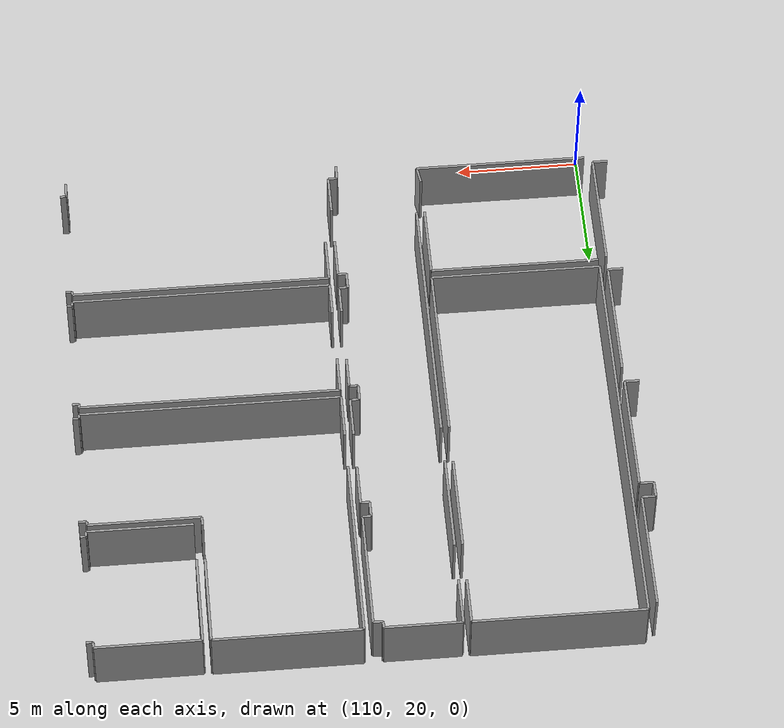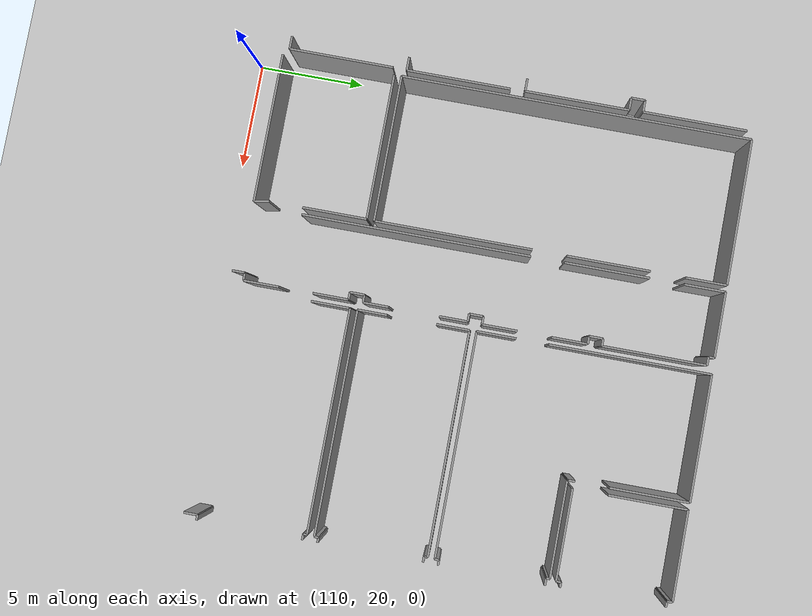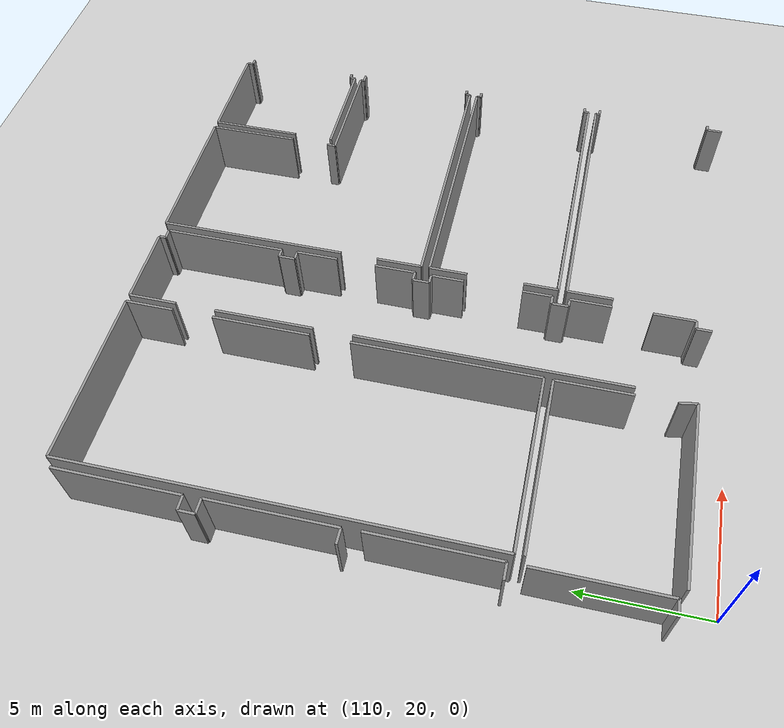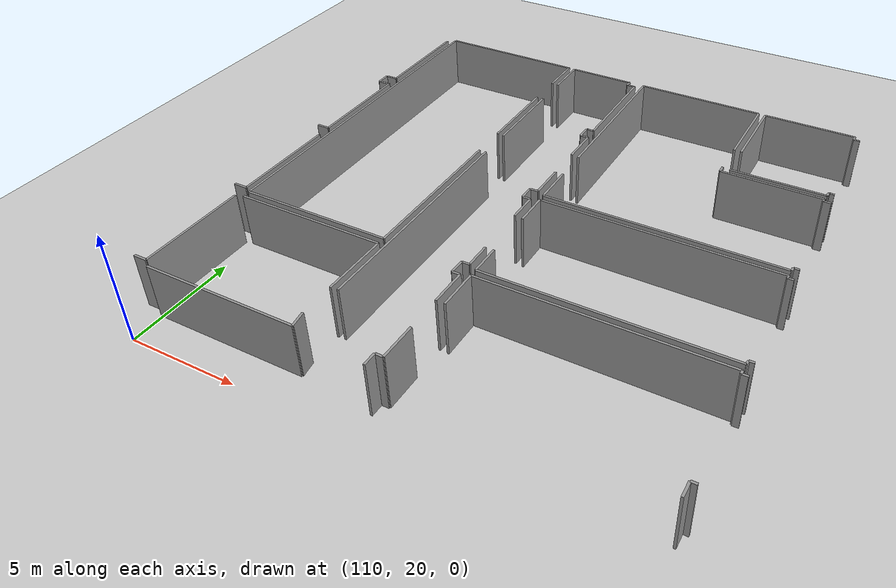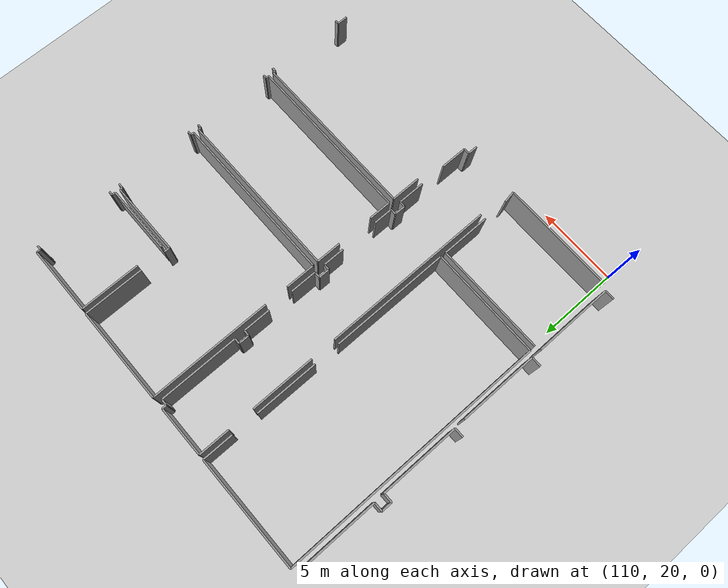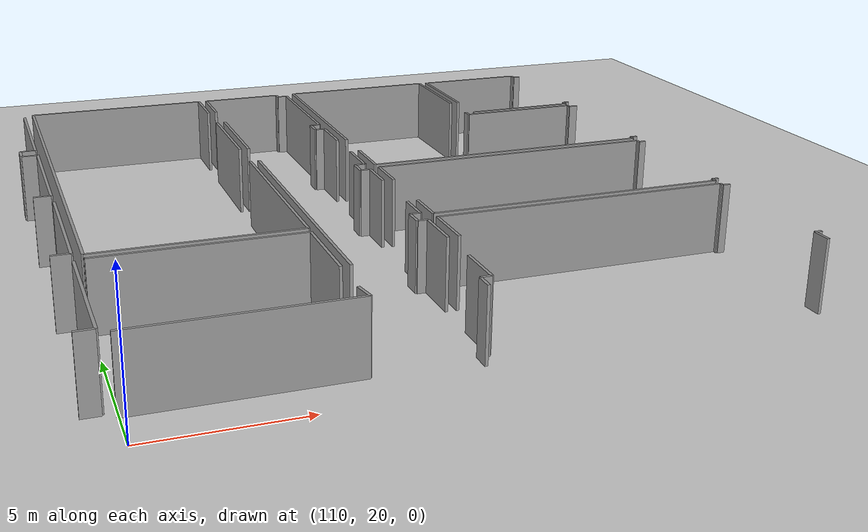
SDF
<sdf version="1.6">
 <world name="default">
  <model name="ground_plane">
   <static>1</static>
   <link name="link">
    <collision name="collision">
     <geometry><plane><normal>0 0 1</normal><size>100 100</size></plane></geometry>
     <surface><friction><ode><mu>100</mu><mu2>50</mu2></ode></friction></surface>
    </collision>
    <visual name="visual">
     <cast_shadows>0</cast_shadows>
     <geometry><plane><normal>0 0 1</normal><size>100 100</size></plane></geometry>
     <material>
      <script><uri>file://media/materials/scripts/gazebo.material</uri><name>Gazebo/Grey</name></script>
     </material>
    </visual>
   </link>
  </model>
  <model name="50015848">
   <static>1</static>
   <link name="Wall_986">
    <collision name="Wall_986_Collision">
     <geometry><box><size>4.91750661279 0.1 2.5</size></box></geometry>
     <pose>2.4587533064 0 1.25 0 0 0</pose>
    </collision>
    <visual name="Wall_986_Visual">
     <pose>2.4587533064 0 1.25 0 0 0</pose>
     <geometry><box><size>4.91750661279 0.1 2.5</size></box></geometry>
     <material>
      <script><uri>file://media/materials/scripts/gazebo.material</uri><name>Gazebo/Grey</name></script>
      <ambient>1 1 1 1</ambient>
     </material>
    </visual>
    <pose>241.354401233 -0.298638113784 0 0 0 -1.57079632679</pose>
   </link>
   <link name="Wall_987">
    <collision name="Wall_987_Collision">
     <geometry><box><size>0.55312751746 0.1 2.5</size></box></geometry>
     <pose>0.27656375873 0 1.25 0 0 0</pose>
    </collision>
    <visual name="Wall_987_Visual">
     <pose>0.27656375873 0 1.25 0 0 0</pose>
     <geometry><box><size>0.55312751746 0.1 2.5</size></box></geometry>
     <material>
      <script><uri>file://media/materials/scripts/gazebo.material</uri><name>Gazebo/Grey</name></script>
      <ambient>1 1 1 1</ambient>
     </material>
    </visual>
    <pose>241.354401233 -5.21614472658 0 0 0 3.14159265359</pose>
   </link>
   <link name="Wall_988">
    <collision name="Wall_988_Collision">
     <geometry><box><size>0.652842707534 0.1 2.5</size></box></geometry>
     <pose>0.326421353767 0 1.25 0 0 0</pose>
    </collision>
    <visual name="Wall_988_Visual">
     <pose>0.326421353767 0 1.25 0 0 0</pose>
     <geometry><box><size>0.652842707534 0.1 2.5</size></box></geometry>
     <material>
      <script><uri>file://media/materials/scripts/gazebo.material</uri><name>Gazebo/Grey</name></script>
      <ambient>1 1 1 1</ambient>
     </material>
    </visual>
    <pose>240.801273716 -5.21614472658 0 0 0 -1.57079632679</pose>
   </link>
   <link name="Wall_989">
    <collision name="Wall_989_Collision">
     <geometry><box><size>0.578500339361 0.1 2.5</size></box></geometry>
     <pose>0.289250169681 0 1.25 0 0 0</pose>
    </collision>
    <visual name="Wall_989_Visual">
     <pose>0.289250169681 0 1.25 0 0 0</pose>
     <geometry><box><size>0.578500339361 0.1 2.5</size></box></geometry>
     <material>
      <script><uri>file://media/materials/scripts/gazebo.material</uri><name>Gazebo/Grey</name></script>
      <ambient>1 1 1 1</ambient>
     </material>
    </visual>
    <pose>240.801273716 -5.86898743411 0 0 0 0.0</pose>
   </link>
   <link name="Wall_990">
    <collision name="Wall_990_Collision">
     <geometry><box><size>4.92258117717 0.1 2.5</size></box></geometry>
     <pose>2.46129058859 0 1.25 0 0 0</pose>
    </collision>
    <visual name="Wall_990_Visual">
     <pose>2.46129058859 0 1.25 0 0 0</pose>
     <geometry><box><size>4.92258117717 0.1 2.5</size></box></geometry>
     <material>
      <script><uri>file://media/materials/scripts/gazebo.material</uri><name>Gazebo/Grey</name></script>
      <ambient>1 1 1 1</ambient>
     </material>
    </visual>
    <pose>241.379774055 -5.86898743411 0 0 0 -1.57079632679</pose>
   </link>
   <link name="Wall_991">
    <collision name="Wall_991_Collision">
     <geometry><box><size>0.591186750312 0.1 2.5</size></box></geometry>
     <pose>0.295593375156 0 1.25 0 0 0</pose>
    </collision>
    <visual name="Wall_991_Visual">
     <pose>0.295593375156 0 1.25 0 0 0</pose>
     <geometry><box><size>0.591186750312 0.1 2.5</size></box></geometry>
     <material>
      <script><uri>file://media/materials/scripts/gazebo.material</uri><name>Gazebo/Grey</name></script>
      <ambient>1 1 1 1</ambient>
     </material>
    </visual>
    <pose>241.379774055 -10.7915686113 0 0 0 3.14159265359</pose>
   </link>
   <link name="Wall_994">
    <collision name="Wall_994_Collision">
     <geometry><box><size>4.91852152567 0.1 2.5</size></box></geometry>
     <pose>2.45926076283 0 1.25 0 0 0</pose>
    </collision>
    <visual name="Wall_994_Visual">
     <pose>2.45926076283 0 1.25 0 0 0</pose>
     <geometry><box><size>4.91852152567 0.1 2.5</size></box></geometry>
     <material>
      <script><uri>file://media/materials/scripts/gazebo.material</uri><name>Gazebo/Grey</name></script>
      <ambient>1 1 1 1</ambient>
     </material>
    </visual>
    <pose>241.402609595 -11.4827242799 0 0 0 -1.57079632679</pose>
   </link>
   <link name="Wall_995">
    <collision name="Wall_995_Collision">
     <geometry><box><size>0.624171418785 0.1 2.5</size></box></geometry>
     <pose>0.312085709392 0 1.25 0 0 0</pose>
    </collision>
    <visual name="Wall_995_Visual">
     <pose>0.312085709392 0 1.25 0 0 0</pose>
     <geometry><box><size>0.624171418785 0.1 2.5</size></box></geometry>
     <material>
      <script><uri>file://media/materials/scripts/gazebo.material</uri><name>Gazebo/Grey</name></script>
      <ambient>1 1 1 1</ambient>
     </material>
    </visual>
    <pose>241.402609595 -16.4012458056 0 0 0 3.14159265359</pose>
   </link>
   <link name="Wall_998">
    <collision name="Wall_998_Collision">
     <geometry><box><size>4.91674542813 0.1 2.5</size></box></geometry>
     <pose>2.45837271407 0 1.25 0 0 0</pose>
    </collision>
    <visual name="Wall_998_Visual">
     <pose>2.45837271407 0 1.25 0 0 0</pose>
     <geometry><box><size>4.91674542813 0.1 2.5</size></box></geometry>
     <material>
      <script><uri>file://media/materials/scripts/gazebo.material</uri><name>Gazebo/Grey</name></script>
      <ambient>1 1 1 1</ambient>
     </material>
    </visual>
    <pose>241.392460466 -17.055103426 0 0 0 -1.57079632679</pose>
   </link>
   <link name="Wall_999">
    <collision name="Wall_999_Collision">
     <geometry><box><size>0.603873161263 0.1 2.5</size></box></geometry>
     <pose>0.301936580632 0 1.25 0 0 0</pose>
    </collision>
    <visual name="Wall_999_Visual">
     <pose>0.301936580632 0 1.25 0 0 0</pose>
     <geometry><box><size>0.603873161263 0.1 2.5</size></box></geometry>
     <material>
      <script><uri>file://media/materials/scripts/gazebo.material</uri><name>Gazebo/Grey</name></script>
      <ambient>1 1 1 1</ambient>
     </material>
    </visual>
    <pose>241.392460466 -21.9718488541 0 0 0 3.14159265359</pose>
   </link>
   <link name="Wall_1081">
    <collision name="Wall_1081_Collision">
     <geometry><box><size>10.7930909806 0.1 2.5</size></box></geometry>
     <pose>5.3965454903 0 1.25 0 0 0</pose>
    </collision>
    <visual name="Wall_1081_Visual">
     <pose>5.3965454903 0 1.25 0 0 0</pose>
     <geometry><box><size>10.7930909806 0.1 2.5</size></box></geometry>
     <material>
      <script><uri>file://media/materials/scripts/gazebo.material</uri><name>Gazebo/Grey</name></script>
      <ambient>1 1 1 1</ambient>
     </material>
    </visual>
    <pose>248.948486828 -19.9407544609 0 0 0 1.57079632679</pose>
   </link>
   <link name="Wall_1082">
    <collision name="Wall_1082_Collision">
     <geometry><box><size>3.99875673173 0.1 2.5</size></box></geometry>
     <pose>1.99937836586 0 1.25 0 0 0</pose>
    </collision>
    <visual name="Wall_1082_Visual">
     <pose>1.99937836586 0 1.25 0 0 0</pose>
     <geometry><box><size>3.99875673173 0.1 2.5</size></box></geometry>
     <material>
      <script><uri>file://media/materials/scripts/gazebo.material</uri><name>Gazebo/Grey</name></script>
      <ambient>1 1 1 1</ambient>
     </material>
    </visual>
    <pose>248.948486828 -7.57581716345 0 0 0 1.57079632679</pose>
   </link>
   <link name="Wall_1083">
    <collision name="Wall_1083_Collision">
     <geometry><box><size>1.93061801851 0.1 2.5</size></box></geometry>
     <pose>0.965309009255 0 1.25 0 0 0</pose>
    </collision>
    <visual name="Wall_1083_Visual">
     <pose>0.965309009255 0 1.25 0 0 0</pose>
     <geometry><box><size>1.93061801851 0.1 2.5</size></box></geometry>
     <material>
      <script><uri>file://media/materials/scripts/gazebo.material</uri><name>Gazebo/Grey</name></script>
      <ambient>1 1 1 1</ambient>
     </material>
    </visual>
    <pose>248.948486828 -1.96131913301 0 0 0 1.57079632679</pose>
   </link>
   <link name="Wall_1084">
    <collision name="Wall_1084_Collision">
     <geometry><box><size>3.09548427202 0.1 2.5</size></box></geometry>
     <pose>1.54774213601 0 1.25 0 0 0</pose>
    </collision>
    <visual name="Wall_1084_Visual">
     <pose>1.54774213601 0 1.25 0 0 0</pose>
     <geometry><box><size>3.09548427202 0.1 2.5</size></box></geometry>
     <material>
      <script><uri>file://media/materials/scripts/gazebo.material</uri><name>Gazebo/Grey</name></script>
      <ambient>1 1 1 1</ambient>
     </material>
    </visual>
    <pose>248.948486828 -0.0307011145012 0 0 0 0.0</pose>
   </link>
   <link name="Wall_1085">
    <collision name="Wall_1085_Collision">
     <geometry><box><size>0.274280204759 0.1 2.5</size></box></geometry>
     <pose>0.137140102379 0 1.25 0 0 0</pose>
    </collision>
    <visual name="Wall_1085_Visual">
     <pose>0.137140102379 0 1.25 0 0 0</pose>
     <geometry><box><size>0.274280204759 0.1 2.5</size></box></geometry>
     <material>
      <script><uri>file://media/materials/scripts/gazebo.material</uri><name>Gazebo/Grey</name></script>
      <ambient>1 1 1 1</ambient>
     </material>
    </visual>
    <pose>252.0439711 -0.0307011145012 0 0 0 -1.57079632679</pose>
   </link>
   <link name="Wall_1086">
    <collision name="Wall_1086_Collision">
     <geometry><box><size>0.393278739478 0.1 2.5</size></box></geometry>
     <pose>0.196639369739 0 1.25 0 0 0</pose>
    </collision>
    <visual name="Wall_1086_Visual">
     <pose>0.196639369739 0 1.25 0 0 0</pose>
     <geometry><box><size>0.393278739478 0.1 2.5</size></box></geometry>
     <material>
      <script><uri>file://media/materials/scripts/gazebo.material</uri><name>Gazebo/Grey</name></script>
      <ambient>1 1 1 1</ambient>
     </material>
    </visual>
    <pose>252.0439711 -0.30498131926 0 0 0 0.0</pose>
   </link>
   <link name="Wall_1087">
    <collision name="Wall_1087_Collision">
     <geometry><box><size>4.90050682212 0.1 2.5</size></box></geometry>
     <pose>2.45025341106 0 1.25 0 0 0</pose>
    </collision>
    <visual name="Wall_1087_Visual">
     <pose>2.45025341106 0 1.25 0 0 0</pose>
     <geometry><box><size>4.90050682212 0.1 2.5</size></box></geometry>
     <material>
      <script><uri>file://media/materials/scripts/gazebo.material</uri><name>Gazebo/Grey</name></script>
      <ambient>1 1 1 1</ambient>
     </material>
    </visual>
    <pose>252.43724984 -0.30498131926 0 0 0 -1.57079632679</pose>
   </link>
   <link name="Wall_1088">
    <collision name="Wall_1088_Collision">
     <geometry><box><size>0.342533095675 0.1 2.5</size></box></geometry>
     <pose>0.171266547837 0 1.25 0 0 0</pose>
    </collision>
    <visual name="Wall_1088_Visual">
     <pose>0.171266547837 0 1.25 0 0 0</pose>
     <geometry><box><size>0.342533095675 0.1 2.5</size></box></geometry>
     <material>
      <script><uri>file://media/materials/scripts/gazebo.material</uri><name>Gazebo/Grey</name></script>
      <ambient>1 1 1 1</ambient>
     </material>
    </visual>
    <pose>252.43724984 -5.20548814138 0 0 0 3.14159265359</pose>
   </link>
   <link name="Wall_1089">
    <collision name="Wall_1089_Collision">
     <geometry><box><size>0.655887446162 0.1 2.5</size></box></geometry>
     <pose>0.327943723081 0 1.25 0 0 0</pose>
    </collision>
    <visual name="Wall_1089_Visual">
     <pose>0.327943723081 0 1.25 0 0 0</pose>
     <geometry><box><size>0.655887446162 0.1 2.5</size></box></geometry>
     <material>
      <script><uri>file://media/materials/scripts/gazebo.material</uri><name>Gazebo/Grey</name></script>
      <ambient>1 1 1 1</ambient>
     </material>
    </visual>
    <pose>252.094716744 -5.20548814138 0 0 0 -1.57079632679</pose>
   </link>
   <link name="Wall_1090">
    <collision name="Wall_1090_Collision">
     <geometry><box><size>0.365368635386 0.1 2.5</size></box></geometry>
     <pose>0.182684317693 0 1.25 0 0 0</pose>
    </collision>
    <visual name="Wall_1090_Visual">
     <pose>0.182684317693 0 1.25 0 0 0</pose>
     <geometry><box><size>0.365368635386 0.1 2.5</size></box></geometry>
     <material>
      <script><uri>file://media/materials/scripts/gazebo.material</uri><name>Gazebo/Grey</name></script>
      <ambient>1 1 1 1</ambient>
     </material>
    </visual>
    <pose>252.094716744 -5.86137558754 0 0 0 0.0</pose>
   </link>
   <link name="Wall_1091">
    <collision name="Wall_1091_Collision">
     <geometry><box><size>1.69059112332 0.1 2.5</size></box></geometry>
     <pose>0.845295561659 0 1.25 0 0 0</pose>
    </collision>
    <visual name="Wall_1091_Visual">
     <pose>0.845295561659 0 1.25 0 0 0</pose>
     <geometry><box><size>1.69059112332 0.1 2.5</size></box></geometry>
     <material>
      <script><uri>file://media/materials/scripts/gazebo.material</uri><name>Gazebo/Grey</name></script>
      <ambient>1 1 1 1</ambient>
     </material>
    </visual>
    <pose>252.46008538 -5.86137558754 0 0 0 -1.57079632679</pose>
   </link>
   <link name="Wall_1092">
    <collision name="Wall_1092_Collision">
     <geometry><box><size>1.65735272663 0.1 2.5</size></box></geometry>
     <pose>0.828676363313 0 1.25 0 0 0</pose>
    </collision>
    <visual name="Wall_1092_Visual">
     <pose>0.828676363313 0 1.25 0 0 0</pose>
     <geometry><box><size>1.65735272663 0.1 2.5</size></box></geometry>
     <material>
      <script><uri>file://media/materials/scripts/gazebo.material</uri><name>Gazebo/Grey</name></script>
      <ambient>1 1 1 1</ambient>
     </material>
    </visual>
    <pose>252.46008538 -9.14918584958 0 0 0 -1.57079632679</pose>
   </link>
   <link name="Wall_1093">
    <collision name="Wall_1093_Collision">
     <geometry><box><size>0.378055046337 0.1 2.5</size></box></geometry>
     <pose>0.189027523169 0 1.25 0 0 0</pose>
    </collision>
    <visual name="Wall_1093_Visual">
     <pose>0.189027523169 0 1.25 0 0 0</pose>
     <geometry><box><size>0.378055046337 0.1 2.5</size></box></geometry>
     <material>
      <script><uri>file://media/materials/scripts/gazebo.material</uri><name>Gazebo/Grey</name></script>
      <ambient>1 1 1 1</ambient>
     </material>
    </visual>
    <pose>252.46008538 -10.8065385762 0 0 0 3.14159265359</pose>
   </link>
   <link name="Wall_1094">
    <collision name="Wall_1094_Collision">
     <geometry><box><size>0.668573857113 0.1 2.5</size></box></geometry>
     <pose>0.334286928556 0 1.25 0 0 0</pose>
    </collision>
    <visual name="Wall_1094_Visual">
     <pose>0.334286928556 0 1.25 0 0 0</pose>
     <geometry><box><size>0.668573857113 0.1 2.5</size></box></geometry>
     <material>
      <script><uri>file://media/materials/scripts/gazebo.material</uri><name>Gazebo/Grey</name></script>
      <ambient>1 1 1 1</ambient>
     </material>
    </visual>
    <pose>252.082030333 -10.8065385762 0 0 0 -1.57079632679</pose>
   </link>
   <link name="Wall_1095">
    <collision name="Wall_1095_Collision">
     <geometry><box><size>0.365368635386 0.1 2.5</size></box></geometry>
     <pose>0.182684317693 0 1.25 0 0 0</pose>
    </collision>
    <visual name="Wall_1095_Visual">
     <pose>0.182684317693 0 1.25 0 0 0</pose>
     <geometry><box><size>0.365368635386 0.1 2.5</size></box></geometry>
     <material>
      <script><uri>file://media/materials/scripts/gazebo.material</uri><name>Gazebo/Grey</name></script>
      <ambient>1 1 1 1</ambient>
     </material>
    </visual>
    <pose>252.082030333 -11.4751124333 0 0 0 0.0</pose>
   </link>
   <link name="Wall_1096">
    <collision name="Wall_1096_Collision">
     <geometry><box><size>1.33714771423 0.1 2.5</size></box></geometry>
     <pose>0.668573857113 0 1.25 0 0 0</pose>
    </collision>
    <visual name="Wall_1096_Visual">
     <pose>0.668573857113 0 1.25 0 0 0</pose>
     <geometry><box><size>1.33714771423 0.1 2.5</size></box></geometry>
     <material>
      <script><uri>file://media/materials/scripts/gazebo.material</uri><name>Gazebo/Grey</name></script>
      <ambient>1 1 1 1</ambient>
     </material>
    </visual>
    <pose>252.447398969 -11.4751124333 0 0 0 -1.57079632679</pose>
   </link>
   <link name="Wall_1097">
    <collision name="Wall_1097_Collision">
     <geometry><box><size>1.19835837842 0.1 2.5</size></box></geometry>
     <pose>0.599179189211 0 1.25 0 0 0</pose>
    </collision>
    <visual name="Wall_1097_Visual">
     <pose>0.599179189211 0 1.25 0 0 0</pose>
     <geometry><box><size>1.19835837842 0.1 2.5</size></box></geometry>
     <material>
      <script><uri>file://media/materials/scripts/gazebo.material</uri><name>Gazebo/Grey</name></script>
      <ambient>1 1 1 1</ambient>
     </material>
    </visual>
    <pose>252.447398969 -15.1838578107 0 0 0 -1.57079632679</pose>
   </link>
   <link name="Wall_1098">
    <collision name="Wall_1098_Collision">
     <geometry><box><size>0.352682224435 0.1 2.5</size></box></geometry>
     <pose>0.176341112218 0 1.25 0 0 0</pose>
    </collision>
    <visual name="Wall_1098_Visual">
     <pose>0.176341112218 0 1.25 0 0 0</pose>
     <geometry><box><size>0.352682224435 0.1 2.5</size></box></geometry>
     <material>
      <script><uri>file://media/materials/scripts/gazebo.material</uri><name>Gazebo/Grey</name></script>
      <ambient>1 1 1 1</ambient>
     </material>
    </visual>
    <pose>252.447398969 -16.3822161891 0 0 0 3.14159265359</pose>
   </link>
   <link name="Wall_1099">
    <collision name="Wall_1099_Collision">
     <geometry><box><size>0.681260268064 0.1 2.5</size></box></geometry>
     <pose>0.340630134032 0 1.25 0 0 0</pose>
    </collision>
    <visual name="Wall_1099_Visual">
     <pose>0.340630134032 0 1.25 0 0 0</pose>
     <geometry><box><size>0.681260268064 0.1 2.5</size></box></geometry>
     <material>
      <script><uri>file://media/materials/scripts/gazebo.material</uri><name>Gazebo/Grey</name></script>
      <ambient>1 1 1 1</ambient>
     </material>
    </visual>
    <pose>252.094716744 -16.3822161891 0 0 0 -1.57079632679</pose>
   </link>
   <link name="Wall_1100">
    <collision name="Wall_1100_Collision">
     <geometry><box><size>0.352682224435 0.1 2.5</size></box></geometry>
     <pose>0.176341112218 0 1.25 0 0 0</pose>
    </collision>
    <visual name="Wall_1100_Visual">
     <pose>0.176341112218 0 1.25 0 0 0</pose>
     <geometry><box><size>0.352682224435 0.1 2.5</size></box></geometry>
     <material>
      <script><uri>file://media/materials/scripts/gazebo.material</uri><name>Gazebo/Grey</name></script>
      <ambient>1 1 1 1</ambient>
     </material>
    </visual>
    <pose>252.094716744 -17.0634764572 0 0 0 0.0</pose>
   </link>
   <link name="Wall_1101">
    <collision name="Wall_1101_Collision">
     <geometry><box><size>1.67765098415 0.1 2.5</size></box></geometry>
     <pose>0.838825492074 0 1.25 0 0 0</pose>
    </collision>
    <visual name="Wall_1101_Visual">
     <pose>0.838825492074 0 1.25 0 0 0</pose>
     <geometry><box><size>1.67765098415 0.1 2.5</size></box></geometry>
     <material>
      <script><uri>file://media/materials/scripts/gazebo.material</uri><name>Gazebo/Grey</name></script>
      <ambient>1 1 1 1</ambient>
     </material>
    </visual>
    <pose>252.447398969 -17.0634764572 0 0 0 -1.57079632679</pose>
   </link>
   <link name="Wall_1102">
    <collision name="Wall_1102_Collision">
     <geometry><box><size>1.66826304004 0.1 2.5</size></box></geometry>
     <pose>0.834131520022 0 1.25 0 0 0</pose>
    </collision>
    <visual name="Wall_1102_Visual">
     <pose>0.834131520022 0 1.25 0 0 0</pose>
     <geometry><box><size>1.66826304004 0.1 2.5</size></box></geometry>
     <material>
      <script><uri>file://media/materials/scripts/gazebo.material</uri><name>Gazebo/Grey</name></script>
      <ambient>1 1 1 1</ambient>
     </material>
    </visual>
    <pose>252.447398969 -20.332510831 0 0 0 -1.57079632679</pose>
   </link>
   <link name="Wall_1103">
    <collision name="Wall_1103_Collision">
     <geometry><box><size>0.360294071006 0.1 2.5</size></box></geometry>
     <pose>0.180147035503 0 1.25 0 0 0</pose>
    </collision>
    <visual name="Wall_1103_Visual">
     <pose>0.180147035503 0 1.25 0 0 0</pose>
     <geometry><box><size>0.360294071006 0.1 2.5</size></box></geometry>
     <material>
      <script><uri>file://media/materials/scripts/gazebo.material</uri><name>Gazebo/Grey</name></script>
      <ambient>1 1 1 1</ambient>
     </material>
    </visual>
    <pose>252.447398969 -22.0007738711 0 0 0 3.14159265359</pose>
   </link>
   <link name="Wall_1104">
    <collision name="Wall_1104_Collision">
     <geometry><box><size>0.609455182082 0.1 2.5</size></box></geometry>
     <pose>0.304727591041 0 1.25 0 0 0</pose>
    </collision>
    <visual name="Wall_1104_Visual">
     <pose>0.304727591041 0 1.25 0 0 0</pose>
     <geometry><box><size>0.609455182082 0.1 2.5</size></box></geometry>
     <material>
      <script><uri>file://media/materials/scripts/gazebo.material</uri><name>Gazebo/Grey</name></script>
      <ambient>1 1 1 1</ambient>
     </material>
    </visual>
    <pose>252.087104898 -22.0007738711 0 0 0 -1.57079632679</pose>
   </link>
   <link name="Wall_1140">
    <collision name="Wall_1140_Collision">
     <geometry><box><size>7.01304797366 0.1 2.5</size></box></geometry>
     <pose>3.50652398683 0 1.25 0 0 0</pose>
    </collision>
    <visual name="Wall_1140_Visual">
     <pose>3.50652398683 0 1.25 0 0 0</pose>
     <geometry><box><size>7.01304797366 0.1 2.5</size></box></geometry>
     <material>
      <script><uri>file://media/materials/scripts/gazebo.material</uri><name>Gazebo/Grey</name></script>
      <ambient>1 1 1 1</ambient>
     </material>
    </visual>
    <pose>248.737892407 -22.2336963761 0 0 0 3.14159265359</pose>
   </link>
   <link name="Wall_1142">
    <collision name="Wall_1142_Collision">
     <geometry><box><size>6.89633299291 0.1 2.5</size></box></geometry>
     <pose>3.44816649646 0 1.25 0 0 0</pose>
    </collision>
    <visual name="Wall_1142_Visual">
     <pose>3.44816649646 0 1.25 0 0 0</pose>
     <geometry><box><size>6.89633299291 0.1 2.5</size></box></geometry>
     <material>
      <script><uri>file://media/materials/scripts/gazebo.material</uri><name>Gazebo/Grey</name></script>
      <ambient>1 1 1 1</ambient>
     </material>
    </visual>
    <pose>241.724844433 -16.9373735323 0 0 0 0.0</pose>
   </link>
   <link name="Wall_1143">
    <collision name="Wall_1143_Collision">
     <geometry><box><size>3.02469409892 0.1 2.5</size></box></geometry>
     <pose>1.51234704946 0 1.25 0 0 0</pose>
    </collision>
    <visual name="Wall_1143_Visual">
     <pose>1.51234704946 0 1.25 0 0 0</pose>
     <geometry><box><size>3.02469409892 0.1 2.5</size></box></geometry>
     <material>
      <script><uri>file://media/materials/scripts/gazebo.material</uri><name>Gazebo/Grey</name></script>
      <ambient>1 1 1 1</ambient>
     </material>
    </visual>
    <pose>248.621177426 -16.9373735323 0 0 0 -1.57079632679</pose>
   </link>
   <link name="Wall_1144">
    <collision name="Wall_1144_Collision">
     <geometry><box><size>0.715456171568 0.1 2.5</size></box></geometry>
     <pose>0.357728085784 0 1.25 0 0 0</pose>
    </collision>
    <visual name="Wall_1144_Visual">
     <pose>0.357728085784 0 1.25 0 0 0</pose>
     <geometry><box><size>0.715456171568 0.1 2.5</size></box></geometry>
     <material>
      <script><uri>file://media/materials/scripts/gazebo.material</uri><name>Gazebo/Grey</name></script>
      <ambient>1 1 1 1</ambient>
     </material>
    </visual>
    <pose>248.621177426 -21.5278244708 0 0 0 -1.40693029793</pose>
   </link>
   <link name="Wall_1145">
    <collision name="Wall_1145_Collision">
     <geometry><box><size>6.91663125044 0.1 2.5</size></box></geometry>
     <pose>3.45831562522 0 1.25 0 0 0</pose>
    </collision>
    <visual name="Wall_1145_Visual">
     <pose>3.45831562522 0 1.25 0 0 0</pose>
     <geometry><box><size>6.91663125044 0.1 2.5</size></box></geometry>
     <material>
      <script><uri>file://media/materials/scripts/gazebo.material</uri><name>Gazebo/Grey</name></script>
      <ambient>1 1 1 1</ambient>
     </material>
    </visual>
    <pose>248.636401119 -16.5897658723 0 0 0 3.14159265359</pose>
   </link>
   <link name="Wall_1146">
    <collision name="Wall_1146_Collision">
     <geometry><box><size>16.5689601583 0.1 2.5</size></box></geometry>
     <pose>8.28448007916 0 1.25 0 0 0</pose>
    </collision>
    <visual name="Wall_1146_Visual">
     <pose>8.28448007916 0 1.25 0 0 0</pose>
     <geometry><box><size>16.5689601583 0.1 2.5</size></box></geometry>
     <material>
      <script><uri>file://media/materials/scripts/gazebo.material</uri><name>Gazebo/Grey</name></script>
      <ambient>1 1 1 1</ambient>
     </material>
    </visual>
    <pose>241.719769869 -16.5897658723 0 0 0 1.57079632679</pose>
   </link>
   <link name="Wall_1147">
    <collision name="Wall_1147_Collision">
     <geometry><box><size>6.91155668606 0.1 2.5</size></box></geometry>
     <pose>3.45577834303 0 1.25 0 0 0</pose>
    </collision>
    <visual name="Wall_1147_Visual">
     <pose>3.45577834303 0 1.25 0 0 0</pose>
     <geometry><box><size>6.91155668606 0.1 2.5</size></box></geometry>
     <material>
      <script><uri>file://media/materials/scripts/gazebo.material</uri><name>Gazebo/Grey</name></script>
      <ambient>1 1 1 1</ambient>
     </material>
    </visual>
    <pose>241.719769869 -0.0208057139595 0 0 0 0.0</pose>
   </link>
   <link name="Wall_1148">
    <collision name="Wall_1148_Collision">
     <geometry><box><size>1.92960310563 0.1 2.5</size></box></geometry>
     <pose>0.964801552817 0 1.25 0 0 0</pose>
    </collision>
    <visual name="Wall_1148_Visual">
     <pose>0.964801552817 0 1.25 0 0 0</pose>
     <geometry><box><size>1.92960310563 0.1 2.5</size></box></geometry>
     <material>
      <script><uri>file://media/materials/scripts/gazebo.material</uri><name>Gazebo/Grey</name></script>
      <ambient>1 1 1 1</ambient>
     </material>
    </visual>
    <pose>248.631326555 -0.0208057139595 0 0 0 -1.57079632679</pose>
   </link>
   <link name="Wall_1149">
    <collision name="Wall_1149_Collision">
     <geometry><box><size>3.93278739478 0.1 2.5</size></box></geometry>
     <pose>1.96639369739 0 1.25 0 0 0</pose>
    </collision>
    <visual name="Wall_1149_Visual">
     <pose>1.96639369739 0 1.25 0 0 0</pose>
     <geometry><box><size>3.93278739478 0.1 2.5</size></box></geometry>
     <material>
      <script><uri>file://media/materials/scripts/gazebo.material</uri><name>Gazebo/Grey</name></script>
      <ambient>1 1 1 1</ambient>
     </material>
    </visual>
    <pose>248.631326555 -3.59355276595 0 0 0 -1.57079632679</pose>
   </link>
   <link name="Wall_1150">
    <collision name="Wall_1150_Collision">
     <geometry><box><size>7.44058175317 0.1 2.5</size></box></geometry>
     <pose>3.72029087658 0 1.25 0 0 0</pose>
    </collision>
    <visual name="Wall_1150_Visual">
     <pose>3.72029087658 0 1.25 0 0 0</pose>
     <geometry><box><size>7.44058175317 0.1 2.5</size></box></geometry>
     <material>
      <script><uri>file://media/materials/scripts/gazebo.material</uri><name>Gazebo/Grey</name></script>
      <ambient>1 1 1 1</ambient>
     </material>
    </visual>
    <pose>248.631326555 -9.14918584958 0 0 0 -1.57011431497</pose>
   </link>
   <link name="Wall_1151">
    <collision name="Wall_1151_Collision">
     <geometry><box><size>10.5195719605 0.1 2.5</size></box></geometry>
     <pose>5.25978598025 0 1.25 0 0 0</pose>
    </collision>
    <visual name="Wall_1151_Visual">
     <pose>5.25978598025 0 1.25 0 0 0</pose>
     <geometry><box><size>10.5195719605 0.1 2.5</size></box></geometry>
     <material>
      <script><uri>file://media/materials/scripts/gazebo.material</uri><name>Gazebo/Grey</name></script>
      <ambient>1 1 1 1</ambient>
     </material>
    </visual>
    <pose>263.329802282 -10.9892228939 0 0 0 3.14159265359</pose>
   </link>
   <link name="Wall_1152">
    <collision name="Wall_1152_Collision">
     <geometry><box><size>1.85399209637 0.1 2.5</size></box></geometry>
     <pose>0.926996048183 0 1.25 0 0 0</pose>
    </collision>
    <visual name="Wall_1152_Visual">
     <pose>0.926996048183 0 1.25 0 0 0</pose>
     <geometry><box><size>1.85399209637 0.1 2.5</size></box></geometry>
     <material>
      <script><uri>file://media/materials/scripts/gazebo.material</uri><name>Gazebo/Grey</name></script>
      <ambient>1 1 1 1</ambient>
     </material>
    </visual>
    <pose>252.810230322 -10.9892228939 0 0 0 1.57079632679</pose>
   </link>
   <link name="Wall_1153">
    <collision name="Wall_1153_Collision">
     <geometry><box><size>7.60474218041 0.1 2.5</size></box></geometry>
     <pose>3.80237109021 0 1.25 0 0 0</pose>
    </collision>
    <visual name="Wall_1153_Visual">
     <pose>3.80237109021 0 1.25 0 0 0</pose>
     <geometry><box><size>7.60474218041 0.1 2.5</size></box></geometry>
     <material>
      <script><uri>file://media/materials/scripts/gazebo.material</uri><name>Gazebo/Grey</name></script>
      <ambient>1 1 1 1</ambient>
     </material>
    </visual>
    <pose>252.810230322 -7.6245329815 0 0 0 1.57079632679</pose>
   </link>
   <link name="Wall_1154">
    <collision name="Wall_1154_Collision">
     <geometry><box><size>5.93216576065 0.1 2.5</size></box></geometry>
     <pose>2.96608288032 0 1.25 0 0 0</pose>
    </collision>
    <visual name="Wall_1154_Visual">
     <pose>2.96608288032 0 1.25 0 0 0</pose>
     <geometry><box><size>5.93216576065 0.1 2.5</size></box></geometry>
     <material>
      <script><uri>file://media/materials/scripts/gazebo.material</uri><name>Gazebo/Grey</name></script>
      <ambient>1 1 1 1</ambient>
     </material>
    </visual>
    <pose>252.810230322 -0.0197908010834 0 0 0 0.0</pose>
   </link>
   <link name="Wall_1155">
    <collision name="Wall_1155_Collision">
     <geometry><box><size>3.72244670122 0.1 2.5</size></box></geometry>
     <pose>1.86122335061 0 1.25 0 0 0</pose>
    </collision>
    <visual name="Wall_1155_Visual">
     <pose>1.86122335061 0 1.25 0 0 0</pose>
     <geometry><box><size>3.72244670122 0.1 2.5</size></box></geometry>
     <material>
      <script><uri>file://media/materials/scripts/gazebo.material</uri><name>Gazebo/Grey</name></script>
      <ambient>1 1 1 1</ambient>
     </material>
    </visual>
    <pose>258.742396082 -0.0197908010834 0 0 0 -1.57079632679</pose>
   </link>
   <link name="Wall_1156">
    <collision name="Wall_1156_Collision">
     <geometry><box><size>0.3668910047 0.1 2.5</size></box></geometry>
     <pose>0.18344550235 0 1.25 0 0 0</pose>
    </collision>
    <visual name="Wall_1156_Visual">
     <pose>0.18344550235 0 1.25 0 0 0</pose>
     <geometry><box><size>0.3668910047 0.1 2.5</size></box></geometry>
     <material>
      <script><uri>file://media/materials/scripts/gazebo.material</uri><name>Gazebo/Grey</name></script>
      <ambient>1 1 1 1</ambient>
     </material>
    </visual>
    <pose>258.742396082 -5.32880005582 0 0 0 -1.57079632679</pose>
   </link>
   <link name="Wall_1157">
    <collision name="Wall_1157_Collision">
     <geometry><box><size>4.52651142728 0.1 2.5</size></box></geometry>
     <pose>2.26325571364 0 1.25 0 0 0</pose>
    </collision>
    <visual name="Wall_1157_Visual">
     <pose>2.26325571364 0 1.25 0 0 0</pose>
     <geometry><box><size>4.52651142728 0.1 2.5</size></box></geometry>
     <material>
      <script><uri>file://media/materials/scripts/gazebo.material</uri><name>Gazebo/Grey</name></script>
      <ambient>1 1 1 1</ambient>
     </material>
    </visual>
    <pose>258.742396082 -5.69569106052 0 0 0 0.0</pose>
   </link>
   <link name="Wall_1158">
    <collision name="Wall_1158_Collision">
     <geometry><box><size>0.166953168114 0.1 2.5</size></box></geometry>
     <pose>0.083476584057 0 1.25 0 0 0</pose>
    </collision>
    <visual name="Wall_1158_Visual">
     <pose>0.083476584057 0 1.25 0 0 0</pose>
     <geometry><box><size>0.166953168114 0.1 2.5</size></box></geometry>
     <material>
      <script><uri>file://media/materials/scripts/gazebo.material</uri><name>Gazebo/Grey</name></script>
      <ambient>1 1 1 1</ambient>
     </material>
    </visual>
    <pose>263.26890751 -5.69569106052 0 0 0 -1.57079632679</pose>
   </link>
   <link name="Wall_1159">
    <collision name="Wall_1159_Collision">
     <geometry><box><size>0.332383966914 0.1 2.5</size></box></geometry>
     <pose>0.166191983457 0 1.25 0 0 0</pose>
    </collision>
    <visual name="Wall_1159_Visual">
     <pose>0.166191983457 0 1.25 0 0 0</pose>
     <geometry><box><size>0.332383966914 0.1 2.5</size></box></geometry>
     <material>
      <script><uri>file://media/materials/scripts/gazebo.material</uri><name>Gazebo/Grey</name></script>
      <ambient>1 1 1 1</ambient>
     </material>
    </visual>
    <pose>263.26890751 -5.86264422863 0 0 0 0.0</pose>
   </link>
   <link name="Wall_1160">
    <collision name="Wall_1160_Collision">
     <geometry><box><size>0.243579090257 0.1 2.5</size></box></geometry>
     <pose>0.121789545129 0 1.25 0 0 0</pose>
    </collision>
    <visual name="Wall_1160_Visual">
     <pose>0.121789545129 0 1.25 0 0 0</pose>
     <geometry><box><size>0.243579090257 0.1 2.5</size></box></geometry>
     <material>
      <script><uri>file://media/materials/scripts/gazebo.material</uri><name>Gazebo/Grey</name></script>
      <ambient>1 1 1 1</ambient>
     </material>
    </visual>
    <pose>263.601291477 -10.795881991 0 0 0 3.14159265359</pose>
   </link>
   <link name="Wall_1161">
    <collision name="Wall_1161_Collision">
     <geometry><box><size>0.195345024614 0.1 2.5</size></box></geometry>
     <pose>0.097672512307 0 1.25 0 0 0</pose>
    </collision>
    <visual name="Wall_1161_Visual">
     <pose>0.097672512307 0 1.25 0 0 0</pose>
     <geometry><box><size>0.195345024614 0.1 2.5</size></box></geometry>
     <material>
      <script><uri>file://media/materials/scripts/gazebo.material</uri><name>Gazebo/Grey</name></script>
      <ambient>1 1 1 1</ambient>
     </material>
    </visual>
    <pose>263.357712386 -10.795881991 0 0 0 -1.71416288806</pose>
   </link>
   <link name="Wall_1162">
    <collision name="Wall_1162_Collision">
     <geometry><box><size>4.24487310417 0.1 2.5</size></box></geometry>
     <pose>2.12243655209 0 1.25 0 0 0</pose>
    </collision>
    <visual name="Wall_1162_Visual">
     <pose>2.12243655209 0 1.25 0 0 0</pose>
     <geometry><box><size>4.24487310417 0.1 2.5</size></box></geometry>
     <material>
      <script><uri>file://media/materials/scripts/gazebo.material</uri><name>Gazebo/Grey</name></script>
      <ambient>1 1 1 1</ambient>
     </material>
    </visual>
    <pose>263.319653154 -5.39476939276 0 0 0 3.14159265359</pose>
   </link>
   <link name="Wall_1163">
    <collision name="Wall_1163_Collision">
     <geometry><box><size>3.70773046451 0.1 2.5</size></box></geometry>
     <pose>1.85386523226 0 1.25 0 0 0</pose>
    </collision>
    <visual name="Wall_1163_Visual">
     <pose>1.85386523226 0 1.25 0 0 0</pose>
     <geometry><box><size>3.70773046451 0.1 2.5</size></box></geometry>
     <material>
      <script><uri>file://media/materials/scripts/gazebo.material</uri><name>Gazebo/Grey</name></script>
      <ambient>1 1 1 1</ambient>
     </material>
    </visual>
    <pose>259.074780049 -3.74934189243 0 0 0 1.57079632679</pose>
   </link>
   <link name="Wall_1164">
    <collision name="Wall_1164_Collision">
     <geometry><box><size>4.22203756446 0.1 2.5</size></box></geometry>
     <pose>2.11101878223 0 1.25 0 0 0</pose>
    </collision>
    <visual name="Wall_1164_Visual">
     <pose>2.11101878223 0 1.25 0 0 0</pose>
     <geometry><box><size>4.22203756446 0.1 2.5</size></box></geometry>
     <material>
      <script><uri>file://media/materials/scripts/gazebo.material</uri><name>Gazebo/Grey</name></script>
      <ambient>1 1 1 1</ambient>
     </material>
    </visual>
    <pose>259.074780049 -0.041611427919 0 0 0 0.0</pose>
   </link>
   <link name="Wall_1165">
    <collision name="Wall_1165_Collision">
     <geometry><box><size>0.252459577923 0.1 2.5</size></box></geometry>
     <pose>0.126229788962 0 1.25 0 0 0</pose>
    </collision>
    <visual name="Wall_1165_Visual">
     <pose>0.126229788962 0 1.25 0 0 0</pose>
     <geometry><box><size>0.252459577923 0.1 2.5</size></box></geometry>
     <material>
      <script><uri>file://media/materials/scripts/gazebo.material</uri><name>Gazebo/Grey</name></script>
      <ambient>1 1 1 1</ambient>
     </material>
    </visual>
    <pose>263.296817614 -0.041611427919 0 0 0 -1.57079632679</pose>
   </link>
   <link name="Wall_1166">
    <collision name="Wall_1166_Collision">
     <geometry><box><size>0.27402647654 0.1 2.5</size></box></geometry>
     <pose>0.13701323827 0 1.25 0 0 0</pose>
    </collision>
    <visual name="Wall_1166_Visual">
     <pose>0.13701323827 0 1.25 0 0 0</pose>
     <geometry><box><size>0.27402647654 0.1 2.5</size></box></geometry>
     <material>
      <script><uri>file://media/materials/scripts/gazebo.material</uri><name>Gazebo/Grey</name></script>
      <ambient>1 1 1 1</ambient>
     </material>
    </visual>
    <pose>263.296817614 -0.294071005842 0 0 0 0.0</pose>
   </link>
   <link name="Wall_1167">
    <collision name="Wall_1167_Collision">
     <geometry><box><size>0.238504525877 0.1 2.5</size></box></geometry>
     <pose>0.119252262939 0 1.25 0 0 0</pose>
    </collision>
    <visual name="Wall_1167_Visual">
     <pose>0.119252262939 0 1.25 0 0 0</pose>
     <geometry><box><size>0.238504525877 0.1 2.5</size></box></geometry>
     <material>
      <script><uri>file://media/materials/scripts/gazebo.material</uri><name>Gazebo/Grey</name></script>
      <ambient>1 1 1 1</ambient>
     </material>
    </visual>
    <pose>263.57084409 -5.17021991893 0 0 0 3.14159265359</pose>
   </link>
   <link name="Wall_1168">
    <collision name="Wall_1168_Collision">
     <geometry><box><size>0.224907561502 0.1 2.5</size></box></geometry>
     <pose>0.112453780751 0 1.25 0 0 0</pose>
    </collision>
    <visual name="Wall_1168_Visual">
     <pose>0.112453780751 0 1.25 0 0 0</pose>
     <geometry><box><size>0.224907561502 0.1 2.5</size></box></geometry>
     <material>
      <script><uri>file://media/materials/scripts/gazebo.material</uri><name>Gazebo/Grey</name></script>
      <ambient>1 1 1 1</ambient>
     </material>
    </visual>
    <pose>263.332339564 -5.17021991893 0 0 0 -1.62723350511</pose>
   </link>
   <link name="Wall_1169">
    <collision name="Wall_1169_Collision">
     <geometry><box><size>10.5043482674 0.1 2.5</size></box></geometry>
     <pose>5.25217413368 0 1.25 0 0 0</pose>
    </collision>
    <visual name="Wall_1169_Visual">
     <pose>5.25217413368 0 1.25 0 0 0</pose>
     <geometry><box><size>10.5043482674 0.1 2.5</size></box></geometry>
     <material>
      <script><uri>file://media/materials/scripts/gazebo.material</uri><name>Gazebo/Grey</name></script>
      <ambient>1 1 1 1</ambient>
     </material>
    </visual>
    <pose>263.329802282 -16.5669303326 0 0 0 3.14159265359</pose>
   </link>
   <link name="Wall_1170">
    <collision name="Wall_1170_Collision">
     <geometry><box><size>1.39271419419 0.1 2.5</size></box></geometry>
     <pose>0.696357097095 0 1.25 0 0 0</pose>
    </collision>
    <visual name="Wall_1170_Visual">
     <pose>0.696357097095 0 1.25 0 0 0</pose>
     <geometry><box><size>1.39271419419 0.1 2.5</size></box></geometry>
     <material>
      <script><uri>file://media/materials/scripts/gazebo.material</uri><name>Gazebo/Grey</name></script>
      <ambient>1 1 1 1</ambient>
     </material>
    </visual>
    <pose>252.825454015 -16.5669303326 0 0 0 1.57079632679</pose>
   </link>
   <link name="Wall_1171">
    <collision name="Wall_1171_Collision">
     <geometry><box><size>1.54748840779 0.1 2.5</size></box></geometry>
     <pose>0.773744203896 0 1.25 0 0 0</pose>
    </collision>
    <visual name="Wall_1171_Visual">
     <pose>0.773744203896 0 1.25 0 0 0</pose>
     <geometry><box><size>1.54748840779 0.1 2.5</size></box></geometry>
     <material>
      <script><uri>file://media/materials/scripts/gazebo.material</uri><name>Gazebo/Grey</name></script>
      <ambient>1 1 1 1</ambient>
     </material>
    </visual>
    <pose>252.825454015 -12.8711250944 0 0 0 1.57079632679</pose>
   </link>
   <link name="Wall_1172">
    <collision name="Wall_1172_Collision">
     <geometry><box><size>10.4941991386 0.1 2.5</size></box></geometry>
     <pose>5.2470995693 0 1.25 0 0 0</pose>
    </collision>
    <visual name="Wall_1172_Visual">
     <pose>5.2470995693 0 1.25 0 0 0</pose>
     <geometry><box><size>10.4941991386 0.1 2.5</size></box></geometry>
     <material>
      <script><uri>file://media/materials/scripts/gazebo.material</uri><name>Gazebo/Grey</name></script>
      <ambient>1 1 1 1</ambient>
     </material>
    </visual>
    <pose>252.825454015 -11.3236366866 0 0 0 0.0</pose>
   </link>
   <link name="Wall_1173">
    <collision name="Wall_1173_Collision">
     <geometry><box><size>0.168729265647 0.1 2.5</size></box></geometry>
     <pose>0.0843646328236 0 1.25 0 0 0</pose>
    </collision>
    <visual name="Wall_1173_Visual">
     <pose>0.0843646328236 0 1.25 0 0 0</pose>
     <geometry><box><size>0.168729265647 0.1 2.5</size></box></geometry>
     <material>
      <script><uri>file://media/materials/scripts/gazebo.material</uri><name>Gazebo/Grey</name></script>
      <ambient>1 1 1 1</ambient>
     </material>
    </visual>
    <pose>263.319653154 -11.3236366866 0 0 0 -1.57079632679</pose>
   </link>
   <link name="Wall_1174">
    <collision name="Wall_1174_Collision">
     <geometry><box><size>0.256265501208 0.1 2.5</size></box></geometry>
     <pose>0.128132750604 0 1.25 0 0 0</pose>
    </collision>
    <visual name="Wall_1174_Visual">
     <pose>0.128132750604 0 1.25 0 0 0</pose>
     <geometry><box><size>0.256265501208 0.1 2.5</size></box></geometry>
     <material>
      <script><uri>file://media/materials/scripts/gazebo.material</uri><name>Gazebo/Grey</name></script>
      <ambient>1 1 1 1</ambient>
     </material>
    </visual>
    <pose>263.319653154 -11.4923659522 0 0 0 0.0</pose>
   </link>
   <link name="Wall_1175">
    <collision name="Wall_1175_Collision">
     <geometry><box><size>0.218206268356 0.1 2.5</size></box></geometry>
     <pose>0.109103134178 0 1.25 0 0 0</pose>
    </collision>
    <visual name="Wall_1175_Visual">
     <pose>0.109103134178 0 1.25 0 0 0</pose>
     <geometry><box><size>0.218206268356 0.1 2.5</size></box></geometry>
     <material>
      <script><uri>file://media/materials/scripts/gazebo.material</uri><name>Gazebo/Grey</name></script>
      <ambient>1 1 1 1</ambient>
     </material>
    </visual>
    <pose>263.575918655 -16.3730819732 0 0 0 3.14159265359</pose>
   </link>
   <link name="Wall_1176">
    <collision name="Wall_1176_Collision">
     <geometry><box><size>0.195847288277 0.1 2.5</size></box></geometry>
     <pose>0.0979236441383 0 1.25 0 0 0</pose>
    </collision>
    <visual name="Wall_1176_Visual">
     <pose>0.0979236441383 0 1.25 0 0 0</pose>
     <geometry><box><size>0.195847288277 0.1 2.5</size></box></geometry>
     <material>
      <script><uri>file://media/materials/scripts/gazebo.material</uri><name>Gazebo/Grey</name></script>
      <ambient>1 1 1 1</ambient>
     </material>
    </visual>
    <pose>263.357712386 -16.3730819732 0 0 0 -1.71379268473</pose>
   </link>
   <link name="Wall_1180">
    <collision name="Wall_1180_Collision">
     <geometry><box><size>1.83141028487 0.1 2.5</size></box></geometry>
     <pose>0.915705142437 0 1.25 0 0 0</pose>
    </collision>
    <visual name="Wall_1180_Visual">
     <pose>0.915705142437 0 1.25 0 0 0</pose>
     <geometry><box><size>1.83141028487 0.1 2.5</size></box></geometry>
     <material>
      <script><uri>file://media/materials/scripts/gazebo.material</uri><name>Gazebo/Grey</name></script>
      <ambient>1 1 1 1</ambient>
     </material>
    </visual>
    <pose>252.825454015 -18.7467094622 0 0 0 1.57079632679</pose>
   </link>
   <link name="Wall_1181">
    <collision name="Wall_1181_Collision">
     <geometry><box><size>10.4941991386 0.1 2.5</size></box></geometry>
     <pose>5.2470995693 0 1.25 0 0 0</pose>
    </collision>
    <visual name="Wall_1181_Visual">
     <pose>5.2470995693 0 1.25 0 0 0</pose>
     <geometry><box><size>10.4941991386 0.1 2.5</size></box></geometry>
     <material>
      <script><uri>file://media/materials/scripts/gazebo.material</uri><name>Gazebo/Grey</name></script>
      <ambient>1 1 1 1</ambient>
     </material>
    </visual>
    <pose>252.825454015 -16.9152991773 0 0 0 0.0</pose>
   </link>
   <link name="Wall_1182">
    <collision name="Wall_1182_Collision">
     <geometry><box><size>0.160609962639 0.1 2.5</size></box></geometry>
     <pose>0.0803049813193 0 1.25 0 0 0</pose>
    </collision>
    <visual name="Wall_1182_Visual">
     <pose>0.0803049813193 0 1.25 0 0 0</pose>
     <geometry><box><size>0.160609962639 0.1 2.5</size></box></geometry>
     <material>
      <script><uri>file://media/materials/scripts/gazebo.material</uri><name>Gazebo/Grey</name></script>
      <ambient>1 1 1 1</ambient>
     </material>
    </visual>
    <pose>263.319653154 -16.9152991773 0 0 0 -1.57079632679</pose>
   </link>
   <link name="Wall_1183">
    <collision name="Wall_1183_Collision">
     <geometry><box><size>0.266414629969 0.1 2.5</size></box></geometry>
     <pose>0.133207314985 0 1.25 0 0 0</pose>
    </collision>
    <visual name="Wall_1183_Visual">
     <pose>0.133207314985 0 1.25 0 0 0</pose>
     <geometry><box><size>0.266414629969 0.1 2.5</size></box></geometry>
     <material>
      <script><uri>file://media/materials/scripts/gazebo.material</uri><name>Gazebo/Grey</name></script>
      <ambient>1 1 1 1</ambient>
     </material>
    </visual>
    <pose>263.319653154 -17.0759091399 0 0 0 0.0</pose>
   </link>
   <link name="Wall_1184">
    <collision name="Wall_1184_Collision">
     <geometry><box><size>0.243579090257 0.1 2.5</size></box></geometry>
     <pose>0.121789545129 0 1.25 0 0 0</pose>
    </collision>
    <visual name="Wall_1184_Visual">
     <pose>0.121789545129 0 1.25 0 0 0</pose>
     <geometry><box><size>0.243579090257 0.1 2.5</size></box></geometry>
     <material>
      <script><uri>file://media/materials/scripts/gazebo.material</uri><name>Gazebo/Grey</name></script>
      <ambient>1 1 1 1</ambient>
     </material>
    </visual>
    <pose>263.586067783 -21.9804756135 0 0 0 3.14159265359</pose>
   </link>
   <link name="Wall_1185">
    <collision name="Wall_1185_Collision">
     <geometry><box><size>0.647260686715 0.1 2.5</size></box></geometry>
     <pose>0.323630343358 0 1.25 0 0 0</pose>
    </collision>
    <visual name="Wall_1185_Visual">
     <pose>0.323630343358 0 1.25 0 0 0</pose>
     <geometry><box><size>0.647260686715 0.1 2.5</size></box></geometry>
     <material>
      <script><uri>file://media/materials/scripts/gazebo.material</uri><name>Gazebo/Grey</name></script>
      <ambient>1 1 1 1</ambient>
     </material>
    </visual>
    <pose>263.342488693 -21.9804756135 0 0 0 -1.57079632679</pose>
   </link>
   <pose>-131.8 43.7717730528 0 0 0 0</pose>
  </model>
 </world>
</sdf>
